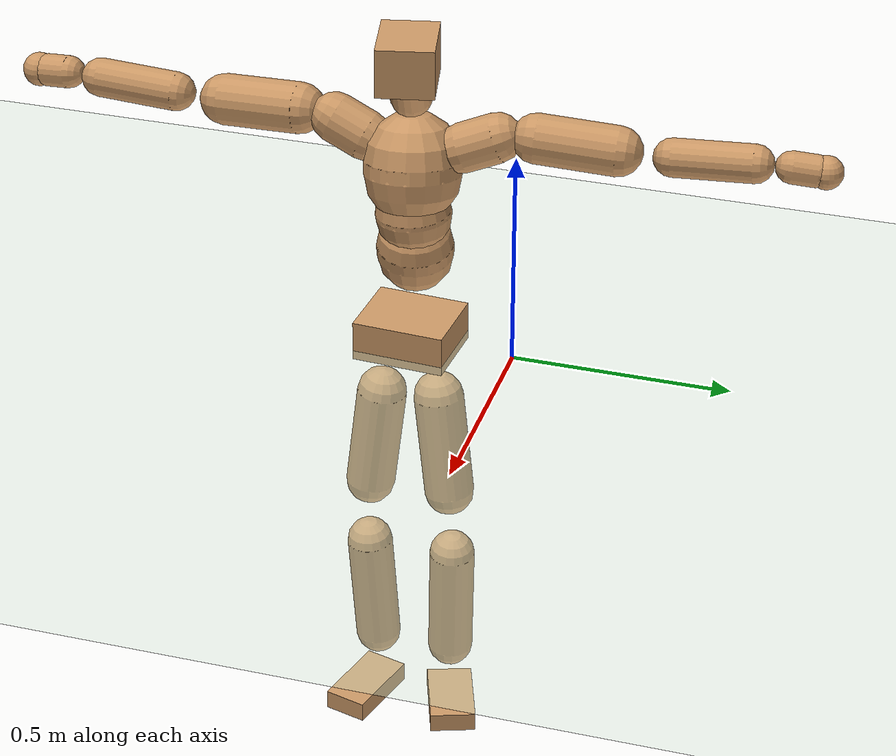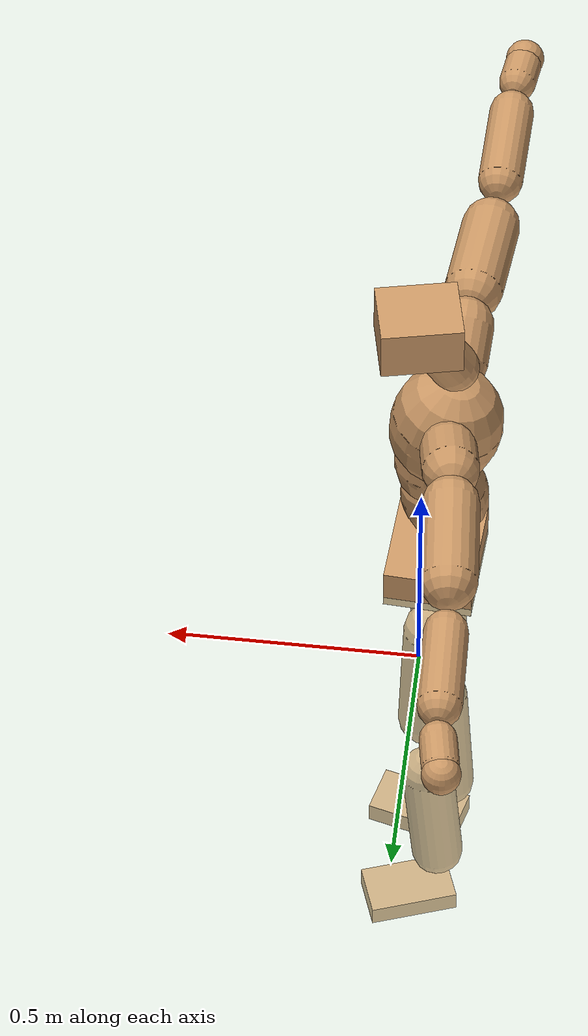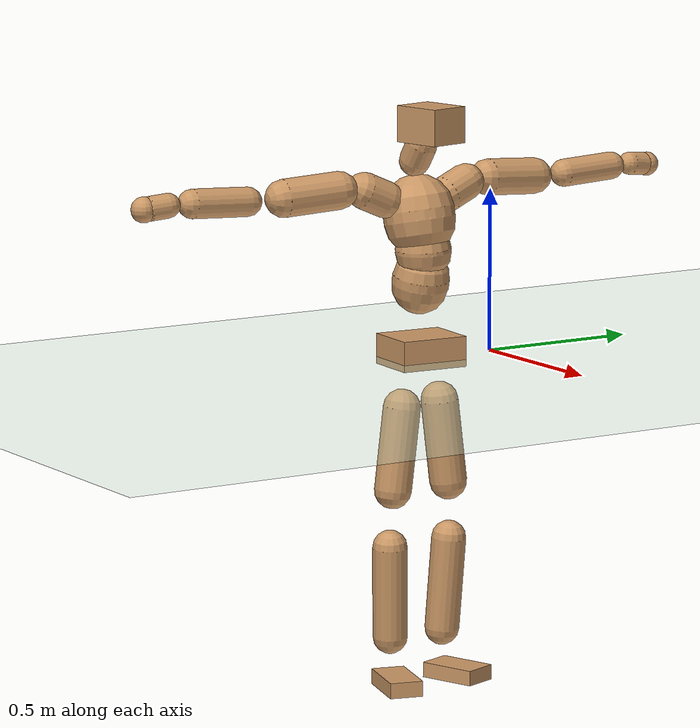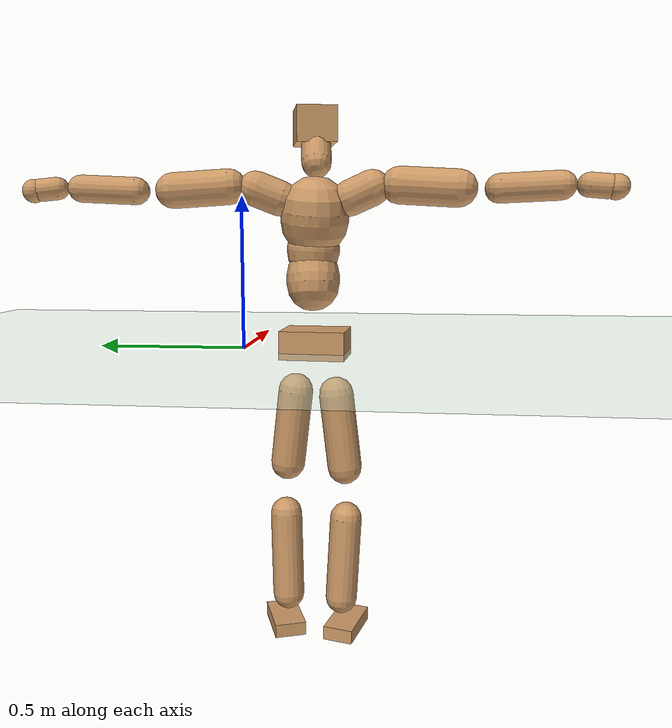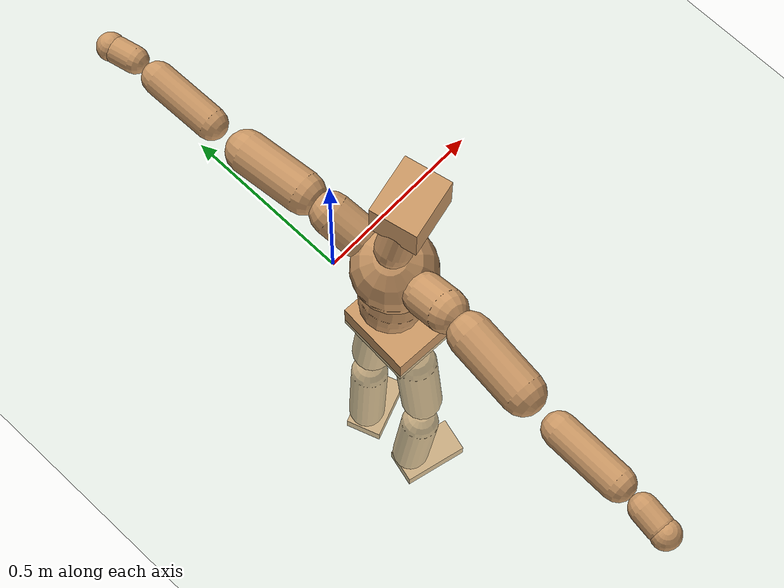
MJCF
<mujoco model="humanoid">
  <compiler coordinate="local" angle="radian"/>
  <default>
    <joint damping="0.0" armature="0.01" stiffness="0.0" limited="true"/>
    <geom conaffinity="1" condim="3" contype="7" margin="0.001" rgba="0.8 0.6 .4 1"/>
  </default>
  <asset>
    <texture type="skybox" builtin="gradient" rgb1=".4 .5 .6" rgb2="0 0 0" width="100" height="100"/>
    <texture builtin="flat" height="1278" mark="cross" markrgb="1 1 1" name="texgeom" random="0.01" rgb1="0.8 0.6 0.4" rgb2="0.8 0.6 0.4" type="cube" width="127"/>
    <texture builtin="checker" height="100" name="texplane" rgb1="0 0 0" rgb2="0.8 0.8 0.8" type="2d" width="100"/>
    <material name="MatPlane" reflectance="0.5" shininess="1" specular="1" texrepeat="60 60" texture="texplane"/>
    <material name="geom" texture="texgeom" texuniform="true"/>
  </asset>
  <worldbody>
    <light cutoff="100" diffuse="1 1 1" dir="-0 0 -1.3" directional="true" exponent="1" pos="0 0 1.3" specular=".1 .1 .1"/>
    <geom conaffinity="1" condim="3" name="floor" pos="0 0 0" rgba="0.8 0.9 0.8 1" size="100 100 .2" type="plane" material="MatPlane"/>
    <body name="Pelvis" pos="0.0007 -0.2433 0.0308">
      <freejoint name="Pelvis"/>
      <geom type="box" contype="1" conaffinity="1" density="500" pos="-0.0102 0.0007 -0.0080" size="0.089 0.1069 0.0467" quat="0.9995 0.0000 0.0000 -0.0319" name="Pelvis"/>
      <body name="L_Hip" pos="-0.0131 0.0578 -0.0853">
        <joint name="L_Hip_x" type="hinge" pos="0 0 0" axis="1 0 0" stiffness="800" damping="80" armature="0.02" range="-180.0000 180.0000"/>
        <joint name="L_Hip_y" type="hinge" pos="0 0 0" axis="0 1 0" stiffness="800" damping="80" armature="0.02" range="-180.0000 180.0000"/>
        <joint name="L_Hip_z" type="hinge" pos="0 0 0" axis="0 0 1" stiffness="800" damping="80" armature="0.02" range="-180.0000 180.0000"/>
        <geom type="capsule" contype="1" conaffinity="1" density="500" fromto="0.0018 0.0096 -0.0847 0.0073 0.0383 -0.3389" size="0.058" name="L_Hip"/>
        <body name="L_Knee" pos="0.0091 0.0478 -0.4237">
          <joint name="L_Knee_x" type="hinge" pos="0 0 0" axis="1 0 0" stiffness="800" damping="80" armature="0.02" range="-180.0000 180.0000"/>
          <joint name="L_Knee_y" type="hinge" pos="0 0 0" axis="0 1 0" stiffness="800" damping="80" armature="0.02" range="-180.0000 180.0000"/>
          <joint name="L_Knee_z" type="hinge" pos="0 0 0" axis="0 0 1" stiffness="800" damping="80" armature="0.02" range="-180.0000 180.0000"/>
          <geom type="capsule" contype="1" conaffinity="1" density="500" fromto="-0.0077 -0.0032 -0.0962 -0.0307 -0.0128 -0.3847" size="0.0536" name="L_Knee"/>
          <body name="L_Ankle" pos="-0.0383 -0.016 -0.4809">
            <joint name="L_Ankle_x" type="hinge" pos="0 0 0" axis="1 0 0" stiffness="800" damping="80" armature="0.02" range="-180.0000 180.0000"/>
            <joint name="L_Ankle_y" type="hinge" pos="0 0 0" axis="0 1 0" stiffness="800" damping="80" armature="0.02" range="-180.0000 180.0000"/>
            <joint name="L_Ankle_z" type="hinge" pos="0 0 0" axis="0 0 1" stiffness="800" damping="80" armature="0.02" range="-180.0000 180.0000"/>
            <geom type="box" contype="1" conaffinity="1" density="500" pos="0.0652 0.0229 -0.0329" size="0.0915 0.0542 0.0233" quat="0.9858 0.0000 0.0000 0.1681" name="L_Ankle"/>
            <body name="L_Toe" pos="0.1304 0.0458 -0.0658">
              <joint name="L_Toe_x" type="hinge" pos="0 0 0" axis="1 0 0" stiffness="500" damping="50" armature="0.02" range="-180.0000 180.0000"/>
              <joint name="L_Toe_y" type="hinge" pos="0 0 0" axis="0 1 0" stiffness="500" damping="50" armature="0.02" range="-180.0000 180.0000"/>
              <joint name="L_Toe_z" type="hinge" pos="0 0 0" axis="0 0 1" stiffness="500" damping="50" armature="0.02" range="-180.0000 180.0000"/>
              <geom type="box" contype="1" conaffinity="1" density="500" pos="0.0000 0.0000 0.0336" size="0.0011 0.0025 0.0012" quat="0.9850 0.0000 0.0000 0.1724" name="L_Toe"/>
            </body>
          </body>
        </body>
      </body>
      <body name="R_Hip" pos="-0.0095 -0.0589 -0.0951">
        <joint name="R_Hip_x" type="hinge" pos="0 0 0" axis="1 0 0" stiffness="800" damping="80" armature="0.02" range="-180.0000 180.0000"/>
        <joint name="R_Hip_y" type="hinge" pos="0 0 0" axis="0 1 0" stiffness="800" damping="80" armature="0.02" range="-180.0000 180.0000"/>
        <joint name="R_Hip_z" type="hinge" pos="0 0 0" axis="0 0 1" stiffness="800" damping="80" armature="0.02" range="-180.0000 180.0000"/>
        <geom type="capsule" contype="1" conaffinity="1" density="500" fromto="-0.0007 -0.0102 -0.0846 -0.0026 -0.0409 -0.3384" size="0.0576" name="R_Hip"/>
        <body name="R_Knee" pos="-0.0033 -0.0511 -0.423">
          <joint name="R_Knee_x" type="hinge" pos="0 0 0" axis="1 0 0" stiffness="800" damping="80" armature="0.02" range="-180.0000 180.0000"/>
          <joint name="R_Knee_y" type="hinge" pos="0 0 0" axis="0 1 0" stiffness="800" damping="80" armature="0.02" range="-180.0000 180.0000"/>
          <joint name="R_Knee_z" type="hinge" pos="0 0 0" axis="0 0 1" stiffness="800" damping="80" armature="0.02" range="-180.0000 180.0000"/>
          <geom type="capsule" contype="1" conaffinity="1" density="500" fromto="-0.0067 0.0042 -0.0951 -0.0269 0.0170 -0.3805" size="0.0539" name="R_Knee"/>
          <body name="R_Ankle" pos="-0.0336 0.0212 -0.4756">
            <joint name="R_Ankle_x" type="hinge" pos="0 0 0" axis="1 0 0" stiffness="800" damping="80" armature="0.02" range="-180.0000 180.0000"/>
            <joint name="R_Ankle_y" type="hinge" pos="0 0 0" axis="0 1 0" stiffness="800" damping="80" armature="0.02" range="-180.0000 180.0000"/>
            <joint name="R_Ankle_z" type="hinge" pos="0 0 0" axis="0 0 1" stiffness="800" damping="80" armature="0.02" range="-180.0000 180.0000"/>
            <geom type="box" contype="1" conaffinity="1" density="500" pos="0.0692 -0.0181 -0.0358" size="0.0964 0.0516 0.024" quat="0.9919 0.0000 0.0000 -0.1274" name="R_Ankle"/>
            <body name="R_Toe" pos="0.1383 -0.0361 -0.0715">
              <joint name="R_Toe_x" type="hinge" pos="0 0 0" axis="1 0 0" stiffness="500" damping="50" armature="0.02" range="-180.0000 180.0000"/>
              <joint name="R_Toe_y" type="hinge" pos="0 0 0" axis="0 1 0" stiffness="500" damping="50" armature="0.02" range="-180.0000 180.0000"/>
              <joint name="R_Toe_z" type="hinge" pos="0 0 0" axis="0 0 1" stiffness="500" damping="50" armature="0.02" range="-180.0000 180.0000"/>
              <geom type="box" contype="1" conaffinity="1" density="500" pos="0.0000 0.0000 0.0357" size="0.0012 0.0025 0.0012" quat="0.9929 0.0000 0.0000 -0.1190" name="R_Toe"/>
            </body>
          </body>
        </body>
      </body>
      <body name="Torso" pos="-0.0389 0.0051 0.1325">
        <joint name="Torso_x" type="hinge" pos="0 0 0" axis="1 0 0" stiffness="1000" damping="100" armature="0.02" range="-180.0000 180.0000"/>
        <joint name="Torso_y" type="hinge" pos="0 0 0" axis="0 1 0" stiffness="1000" damping="100" armature="0.02" range="-180.0000 180.0000"/>
        <joint name="Torso_z" type="hinge" pos="0 0 0" axis="0 0 1" stiffness="1000" damping="100" armature="0.02" range="-180.0000 180.0000"/>
        <geom type="capsule" contype="1" conaffinity="1" density="500" fromto="0.0170 0.0027 0.0827 0.0113 0.0018 0.0552" size="0.0871" name="Torso"/>
        <body name="Spine" pos="0.0284 0.0044 0.1379">
          <joint name="Spine_x" type="hinge" pos="0 0 0" axis="1 0 0" stiffness="1000" damping="100" armature="0.02" range="-180.0000 180.0000"/>
          <joint name="Spine_y" type="hinge" pos="0 0 0" axis="0 1 0" stiffness="1000" damping="100" armature="0.02" range="-180.0000 180.0000"/>
          <joint name="Spine_z" type="hinge" pos="0 0 0" axis="0 0 1" stiffness="1000" damping="100" armature="0.02" range="-180.0000 180.0000"/>
          <geom type="capsule" contype="1" conaffinity="1" density="500" fromto="0.0005 -0.0022 0.0332 0.0003 -0.0015 0.0221" size="0.0859" name="Spine"/>
          <body name="Chest" pos="0.0008 -0.0037 0.0554">
            <joint name="Chest_x" type="hinge" pos="0 0 0" axis="1 0 0" stiffness="1000" damping="100" armature="0.02" range="-180.0000 180.0000"/>
            <joint name="Chest_y" type="hinge" pos="0 0 0" axis="0 1 0" stiffness="1000" damping="100" armature="0.02" range="-180.0000 180.0000"/>
            <joint name="Chest_z" type="hinge" pos="0 0 0" axis="0 0 1" stiffness="1000" damping="100" armature="0.02" range="-180.0000 180.0000"/>
            <geom type="capsule" contype="1" conaffinity="1" density="500" fromto="-0.0180 -0.0052 0.0941 -0.0120 -0.0035 0.0627" size="0.1101" name="Chest"/>
            <body name="Neck" pos="-0.0389 -0.0133 0.2256">
              <joint name="Neck_x" type="hinge" pos="0 0 0" axis="1 0 0" stiffness="500" damping="50" armature="0.02" range="-180.0000 180.0000"/>
              <joint name="Neck_y" type="hinge" pos="0 0 0" axis="0 1 0" stiffness="500" damping="50" armature="0.02" range="-180.0000 180.0000"/>
              <joint name="Neck_z" type="hinge" pos="0 0 0" axis="0 0 1" stiffness="500" damping="50" armature="0.02" range="-180.0000 180.0000"/>
              <geom type="capsule" contype="1" conaffinity="1" density="500" fromto="0.0106 0.0020 0.0180 0.0423 0.0078 0.0719" size="0.0479" name="Neck"/>
              <body name="Head" pos="0.0529 0.0098 0.0898">
                <joint name="Head_x" type="hinge" pos="0 0 0" axis="1 0 0" stiffness="500" damping="50" armature="0.02" range="-180.0000 180.0000"/>
                <joint name="Head_y" type="hinge" pos="0 0 0" axis="0 1 0" stiffness="500" damping="50" armature="0.02" range="-180.0000 180.0000"/>
                <joint name="Head_z" type="hinge" pos="0 0 0" axis="0 0 1" stiffness="500" damping="50" armature="0.02" range="-180.0000 180.0000"/>
                <geom type="box" contype="1" conaffinity="1" density="500" pos="0.0275 0.0059 0.0459" size="0.0797 0.0642 0.0552" quat="0.9944 0.0000 0.0000 0.1056" name="Head"/>
              </body>
            </body>
            <body name="L_Thorax" pos="-0.025 0.0785 0.1227">
              <joint name="L_Thorax_x" type="hinge" pos="0 0 0" axis="1 0 0" stiffness="500" damping="50" armature="0.02" range="-180.0000 180.0000"/>
              <joint name="L_Thorax_y" type="hinge" pos="0 0 0" axis="0 1 0" stiffness="500" damping="50" armature="0.02" range="-180.0000 180.0000"/>
              <joint name="L_Thorax_z" type="hinge" pos="0 0 0" axis="0 0 1" stiffness="500" damping="50" armature="0.02" range="-180.0000 180.0000"/>
              <geom type="capsule" contype="1" conaffinity="1" density="500" fromto="-0.0040 0.0257 0.0102 -0.0161 0.1029 0.0406" size="0.056" name="L_Thorax"/>
              <body name="L_Shoulder" pos="-0.0201 0.1286 0.0508">
                <joint name="L_Shoulder_x" type="hinge" pos="0 0 0" axis="1 0 0" stiffness="500" damping="50" armature="0.02" range="-720.0000 720.0000"/>
                <joint name="L_Shoulder_y" type="hinge" pos="0 0 0" axis="0 1 0" stiffness="500" damping="50" armature="0.02" range="-720.0000 720.0000"/>
                <joint name="L_Shoulder_z" type="hinge" pos="0 0 0" axis="0 0 1" stiffness="500" damping="50" armature="0.02" range="-720.0000 720.0000"/>
                <geom type="capsule" contype="1" conaffinity="1" density="500" fromto="-0.0048 0.0594 -0.0039 -0.0190 0.2376 -0.0155" size="0.056" name="L_Shoulder"/>
                <body name="L_Elbow" pos="-0.0238 0.2969 -0.0193">
                  <joint name="L_Elbow_x" type="hinge" pos="0 0 0" axis="1 0 0" stiffness="500" damping="50" armature="0.02" range="-720.0000 720.0000"/>
                  <joint name="L_Elbow_y" type="hinge" pos="0 0 0" axis="0 1 0" stiffness="500" damping="50" armature="0.02" range="-720.0000 720.0000"/>
                  <joint name="L_Elbow_z" type="hinge" pos="0 0 0" axis="0 0 1" stiffness="500" damping="50" armature="0.02" range="-720.0000 720.0000"/>
                  <geom type="capsule" contype="1" conaffinity="1" density="500" fromto="-0.0020 0.0594 0.0028 -0.0080 0.2377 0.0112" size="0.0431" name="L_Elbow"/>
                  <body name="L_Wrist" pos="-0.01 0.2971 0.014">
                    <joint name="L_Wrist_x" type="hinge" pos="0 0 0" axis="1 0 0" stiffness="300" damping="30" armature="0.02" range="-180.0000 180.0000"/>
                    <joint name="L_Wrist_y" type="hinge" pos="0 0 0" axis="0 1 0" stiffness="300" damping="30" armature="0.02" range="-180.0000 180.0000"/>
                    <joint name="L_Wrist_z" type="hinge" pos="0 0 0" axis="0 0 1" stiffness="300" damping="30" armature="0.02" range="-180.0000 180.0000"/>
                    <geom type="capsule" contype="1" conaffinity="1" density="500" fromto="-0.0033 0.0183 -0.0021 -0.0134 0.0733 -0.0084" size="0.0358" name="L_Wrist"/>
                    <body name="L_Hand" pos="-0.0167 0.0917 -0.0105">
                      <joint name="L_Hand_x" type="hinge" pos="0 0 0" axis="1 0 0" stiffness="300" damping="30" armature="0.02" range="-180.0000 180.0000"/>
                      <joint name="L_Hand_y" type="hinge" pos="0 0 0" axis="0 1 0" stiffness="300" damping="30" armature="0.02" range="-180.0000 180.0000"/>
                      <joint name="L_Hand_z" type="hinge" pos="0 0 0" axis="0 0 1" stiffness="300" damping="30" armature="0.02" range="-180.0000 180.0000"/>
                      <geom type="sphere" contype="1" conaffinity="1" density="500" size="0.0374" pos="0.0000 0.0000 0.0000" name="L_Hand"/>
                    </body>
                  </body>
                </body>
              </body>
            </body>
            <body name="R_Thorax" pos="-0.026 -0.0913 0.1222">
              <joint name="R_Thorax_x" type="hinge" pos="0 0 0" axis="1 0 0" stiffness="500" damping="50" armature="0.02" range="-180.0000 180.0000"/>
              <joint name="R_Thorax_y" type="hinge" pos="0 0 0" axis="0 1 0" stiffness="500" damping="50" armature="0.02" range="-180.0000 180.0000"/>
              <joint name="R_Thorax_z" type="hinge" pos="0 0 0" axis="0 0 1" stiffness="500" damping="50" armature="0.02" range="-180.0000 180.0000"/>
              <geom type="capsule" contype="1" conaffinity="1" density="500" fromto="-0.0016 -0.0241 0.0107 -0.0064 -0.0964 0.0427" size="0.0565" name="R_Thorax"/>
              <body name="R_Shoulder" pos="-0.0081 -0.1205 0.0534">
                <joint name="R_Shoulder_x" type="hinge" pos="0 0 0" axis="1 0 0" stiffness="500" damping="50" armature="0.02" range="-720.0000 720.0000"/>
                <joint name="R_Shoulder_y" type="hinge" pos="0 0 0" axis="0 1 0" stiffness="500" damping="50" armature="0.02" range="-720.0000 720.0000"/>
                <joint name="R_Shoulder_z" type="hinge" pos="0 0 0" axis="0 0 1" stiffness="500" damping="50" armature="0.02" range="-720.0000 720.0000"/>
                <geom type="capsule" contype="1" conaffinity="1" density="500" fromto="-0.0056 -0.0607 -0.0038 -0.0224 -0.2427 -0.0153" size="0.058" name="R_Shoulder"/>
                <body name="R_Elbow" pos="-0.028 -0.3034 -0.0191">
                  <joint name="R_Elbow_x" type="hinge" pos="0 0 0" axis="1 0 0" stiffness="500" damping="50" armature="0.02" range="-720.0000 720.0000"/>
                  <joint name="R_Elbow_y" type="hinge" pos="0 0 0" axis="0 1 0" stiffness="500" damping="50" armature="0.02" range="-720.0000 720.0000"/>
                  <joint name="R_Elbow_z" type="hinge" pos="0 0 0" axis="0 0 1" stiffness="500" damping="50" armature="0.02" range="-720.0000 720.0000"/>
                  <geom type="capsule" contype="1" conaffinity="1" density="500" fromto="-0.0017 -0.0611 0.0025 -0.0069 -0.2444 0.0102" size="0.0447" name="R_Elbow"/>
                  <body name="R_Wrist" pos="-0.0086 -0.3055 0.0127">
                    <joint name="R_Wrist_x" type="hinge" pos="0 0 0" axis="1 0 0" stiffness="300" damping="30" armature="0.02" range="-180.0000 180.0000"/>
                    <joint name="R_Wrist_y" type="hinge" pos="0 0 0" axis="0 1 0" stiffness="300" damping="30" armature="0.02" range="-180.0000 180.0000"/>
                    <joint name="R_Wrist_z" type="hinge" pos="0 0 0" axis="0 0 1" stiffness="300" damping="30" armature="0.02" range="-180.0000 180.0000"/>
                    <geom type="capsule" contype="1" conaffinity="1" density="500" fromto="-0.0022 -0.0191 -0.0018 -0.0088 -0.0765 -0.0072" size="0.0372" name="R_Wrist"/>
                    <body name="R_Hand" pos="-0.011 -0.0957 -0.009">
                      <joint name="R_Hand_x" type="hinge" pos="0 0 0" axis="1 0 0" stiffness="300" damping="30" armature="0.02" range="-180.0000 180.0000"/>
                      <joint name="R_Hand_y" type="hinge" pos="0 0 0" axis="0 1 0" stiffness="300" damping="30" armature="0.02" range="-180.0000 180.0000"/>
                      <joint name="R_Hand_z" type="hinge" pos="0 0 0" axis="0 0 1" stiffness="300" damping="30" armature="0.02" range="-180.0000 180.0000"/>
                      <geom type="sphere" contype="1" conaffinity="1" density="500" size="0.0388" pos="0.0000 0.0000 0.0000" name="R_Hand"/>
                    </body>
                  </body>
                </body>
              </body>
            </body>
          </body>
        </body>
      </body>
    </body>
  </worldbody>
  <actuator>
    <motor name="L_Hip_x" joint="L_Hip_x" gear="500"/>
    <motor name="L_Hip_y" joint="L_Hip_y" gear="500"/>
    <motor name="L_Hip_z" joint="L_Hip_z" gear="500"/>
    <motor name="L_Knee_x" joint="L_Knee_x" gear="500"/>
    <motor name="L_Knee_y" joint="L_Knee_y" gear="500"/>
    <motor name="L_Knee_z" joint="L_Knee_z" gear="500"/>
    <motor name="L_Ankle_x" joint="L_Ankle_x" gear="500"/>
    <motor name="L_Ankle_y" joint="L_Ankle_y" gear="500"/>
    <motor name="L_Ankle_z" joint="L_Ankle_z" gear="500"/>
    <motor name="L_Toe_x" joint="L_Toe_x" gear="500"/>
    <motor name="L_Toe_y" joint="L_Toe_y" gear="500"/>
    <motor name="L_Toe_z" joint="L_Toe_z" gear="500"/>
    <motor name="R_Hip_x" joint="R_Hip_x" gear="500"/>
    <motor name="R_Hip_y" joint="R_Hip_y" gear="500"/>
    <motor name="R_Hip_z" joint="R_Hip_z" gear="500"/>
    <motor name="R_Knee_x" joint="R_Knee_x" gear="500"/>
    <motor name="R_Knee_y" joint="R_Knee_y" gear="500"/>
    <motor name="R_Knee_z" joint="R_Knee_z" gear="500"/>
    <motor name="R_Ankle_x" joint="R_Ankle_x" gear="500"/>
    <motor name="R_Ankle_y" joint="R_Ankle_y" gear="500"/>
    <motor name="R_Ankle_z" joint="R_Ankle_z" gear="500"/>
    <motor name="R_Toe_x" joint="R_Toe_x" gear="500"/>
    <motor name="R_Toe_y" joint="R_Toe_y" gear="500"/>
    <motor name="R_Toe_z" joint="R_Toe_z" gear="500"/>
    <motor name="Torso_x" joint="Torso_x" gear="500"/>
    <motor name="Torso_y" joint="Torso_y" gear="500"/>
    <motor name="Torso_z" joint="Torso_z" gear="500"/>
    <motor name="Spine_x" joint="Spine_x" gear="500"/>
    <motor name="Spine_y" joint="Spine_y" gear="500"/>
    <motor name="Spine_z" joint="Spine_z" gear="500"/>
    <motor name="Chest_x" joint="Chest_x" gear="500"/>
    <motor name="Chest_y" joint="Chest_y" gear="500"/>
    <motor name="Chest_z" joint="Chest_z" gear="500"/>
    <motor name="Neck_x" joint="Neck_x" gear="500"/>
    <motor name="Neck_y" joint="Neck_y" gear="500"/>
    <motor name="Neck_z" joint="Neck_z" gear="500"/>
    <motor name="Head_x" joint="Head_x" gear="500"/>
    <motor name="Head_y" joint="Head_y" gear="500"/>
    <motor name="Head_z" joint="Head_z" gear="500"/>
    <motor name="L_Thorax_x" joint="L_Thorax_x" gear="500"/>
    <motor name="L_Thorax_y" joint="L_Thorax_y" gear="500"/>
    <motor name="L_Thorax_z" joint="L_Thorax_z" gear="500"/>
    <motor name="L_Shoulder_x" joint="L_Shoulder_x" gear="500"/>
    <motor name="L_Shoulder_y" joint="L_Shoulder_y" gear="500"/>
    <motor name="L_Shoulder_z" joint="L_Shoulder_z" gear="500"/>
    <motor name="L_Elbow_x" joint="L_Elbow_x" gear="500"/>
    <motor name="L_Elbow_y" joint="L_Elbow_y" gear="500"/>
    <motor name="L_Elbow_z" joint="L_Elbow_z" gear="500"/>
    <motor name="L_Wrist_x" joint="L_Wrist_x" gear="500"/>
    <motor name="L_Wrist_y" joint="L_Wrist_y" gear="500"/>
    <motor name="L_Wrist_z" joint="L_Wrist_z" gear="500"/>
    <motor name="L_Hand_x" joint="L_Hand_x" gear="500"/>
    <motor name="L_Hand_y" joint="L_Hand_y" gear="500"/>
    <motor name="L_Hand_z" joint="L_Hand_z" gear="500"/>
    <motor name="R_Thorax_x" joint="R_Thorax_x" gear="500"/>
    <motor name="R_Thorax_y" joint="R_Thorax_y" gear="500"/>
    <motor name="R_Thorax_z" joint="R_Thorax_z" gear="500"/>
    <motor name="R_Shoulder_x" joint="R_Shoulder_x" gear="500"/>
    <motor name="R_Shoulder_y" joint="R_Shoulder_y" gear="500"/>
    <motor name="R_Shoulder_z" joint="R_Shoulder_z" gear="500"/>
    <motor name="R_Elbow_x" joint="R_Elbow_x" gear="500"/>
    <motor name="R_Elbow_y" joint="R_Elbow_y" gear="500"/>
    <motor name="R_Elbow_z" joint="R_Elbow_z" gear="500"/>
    <motor name="R_Wrist_x" joint="R_Wrist_x" gear="500"/>
    <motor name="R_Wrist_y" joint="R_Wrist_y" gear="500"/>
    <motor name="R_Wrist_z" joint="R_Wrist_z" gear="500"/>
    <motor name="R_Hand_x" joint="R_Hand_x" gear="500"/>
    <motor name="R_Hand_y" joint="R_Hand_y" gear="500"/>
    <motor name="R_Hand_z" joint="R_Hand_z" gear="500"/>
  </actuator>
  <contact>
    <exclude body1="Torso" body2="Chest"/>
    <exclude body1="Head" body2="Chest"/>
    <exclude body1="R_Knee" body2="R_Toe"/>
    <exclude body1="R_Knee" body2="L_Ankle"/>
    <exclude body1="R_Knee" body2="L_Toe"/>
    <exclude body1="L_Knee" body2="L_Toe"/>
    <exclude body1="L_Knee" body2="R_Ankle"/>
    <exclude body1="L_Knee" body2="R_Toe"/>
    <exclude body1="L_Shoulder" body2="Chest"/>
    <exclude body1="R_Shoulder" body2="Chest"/>
  </contact>
  <sensor/>
  <size njmax="700" nconmax="700"/>
</mujoco>
